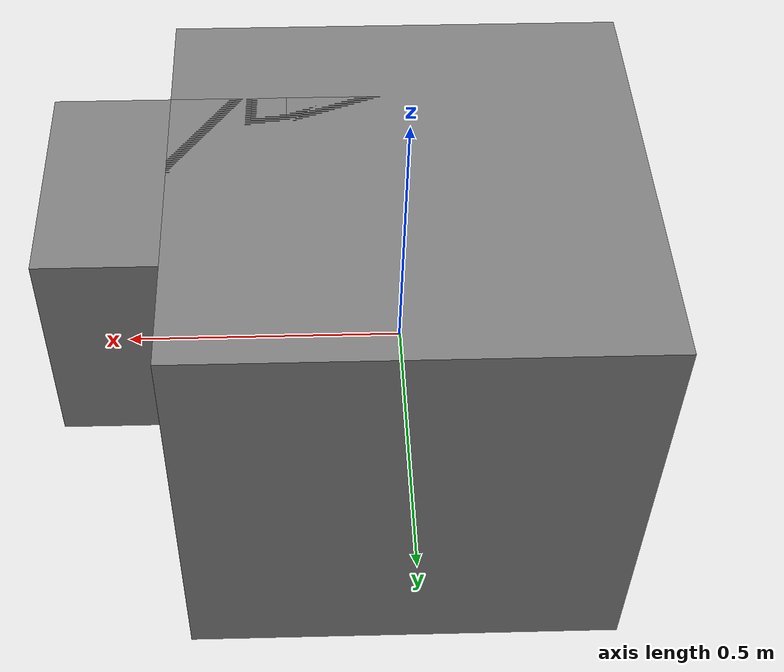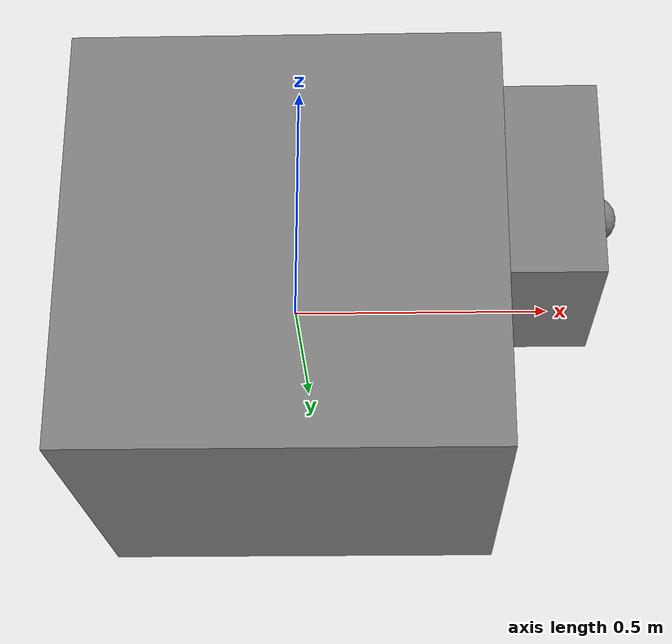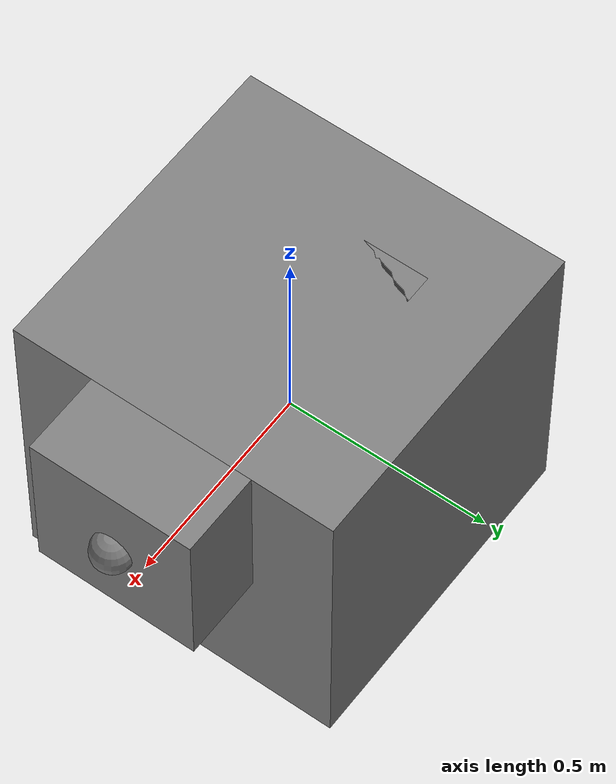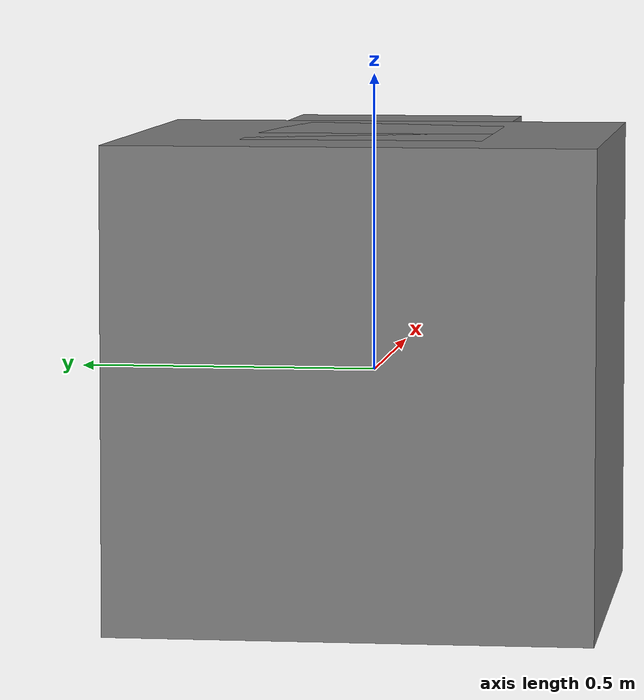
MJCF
<?xml version="1.0"?>
<mujoco model="robot">
    <compiler angle="degree"/>

    <default>
        <joint armature="0.1" damping="1.0" limited="true" margin="0.01"/>
    </default>

    <option timestep="0.001" integrator="RK4" gravity="0 0 -9.81" iterations="50"/>

    <worldbody>
        <body name="base" pos="0 0 0">
            <geom name="base_geom" type="box" size="0.4 0.4 0.4"/>
            <body name="body1" pos="0 0 0.2">
                <joint name="joint1" type="hinge" axis="0 0 1" pos="0 0 0" range="-180 180" damping="0.05"/>
                <geom name="body1_geom" type="box" size="0.2 0.2 0.2"/>
                <body name="body2" pos="0.2 0 0">
                    <joint name="joint2" type="hinge" axis="1 0 0" pos="0 0 0" range="-180 180" damping="0.05"/>
                    <geom name="body2_geom" type="box" size="0.2 0.2 0.2" />
                    <body name="body3" pos="0.2 0 0">
                        <joint name="joint3" type="hinge" axis="1 0 0" pos="0 0 0" range="-180 180" damping="0.05"/>
                        <geom name="body3_geom" type="box" size="0.2 0.2 0.2"/>
                        <body name="end_effector" pos="0.2 0 0">
                            <geom name="ee_geom" type="sphere" size="0.05"/>
                        </body>
                    </body>
                </body>
            </body>
        </body>
    </worldbody>

    <actuator>
        <motor name="motor1" joint="joint1" ctrlrange="-2 2"/>
        <motor name="motor2" joint="joint2" ctrlrange="-2 2"/>
        <motor name="motor3" joint="joint3" ctrlrange="-2 2"/>
    </actuator>

    <visual>
        <map fogstart="5" fogend="40" force="0.1"/>
        <headlight ambient="0.4 0.4 0.4" diffuse="0.8 0.8 0.8" specular="0.2 0.2 0.2"/>
    </visual>

</mujoco>
